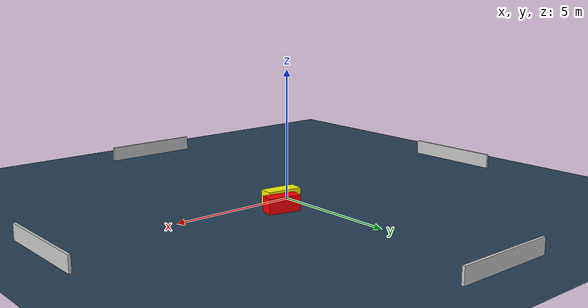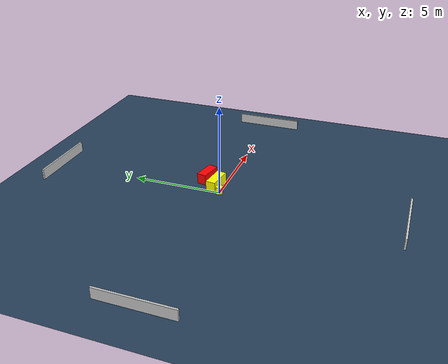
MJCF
<?xml version="1.0" ?>
<mujoco model="generated_environment">
  <option timestep="0.01" integrator="RK4" cone="elliptic"/>
  <default>
    <geom density="1"/>
  </default>
  <asset>
    <texture builtin="gradient" height="3072" name="skybox" rgb1="0.3 0.5 0.7" rgb2="0 0 0" type="skybox" width="512"/>
    <texture builtin="checker" height="300" name="groundplane" rgb1="0.2 0.3 0.4" rgb2="0.1 0.2 0.3" type="2d" width="300"/>
    <material name="groundplane" reflectance="0.2" texrepeat="5 5" texture="groundplane"/>
  </asset>
  <worldbody>
    <light dir="0 0 -1" directional="true" pos="0 0 1.5"/>
    <geom condim="3" friction="0.5 0.005 0.001" material="groundplane" name="floor" pos="0 0 0" size="0 0 0.05" type="plane"/>
    <body name="walls">
      <geom name="wall_1" condim="4" pos="-10.0 0.0 0.3" rgba="0.800000011920929 0.800000011920929 0.800000011920929 1.0" size="0.05 2.0 0.3" type="box"/>
      <geom name="wall_2" condim="4" pos="10.0 0.0 0.3" rgba="0.800000011920929 0.800000011920929 0.800000011920929 1.0" size="0.05 2.0 0.3" type="box"/>
      <geom name="wall_3" condim="4" pos="0.0 -10.0 0.3" rgba="0.800000011920929 0.800000011920929 0.800000011920929 1.0" size="2.0 0.05 0.3" type="box"/>
      <geom name="wall_4" condim="4" pos="0.0 10.0 0.3" rgba="0.800000011920929 0.800000011920929 0.800000011920929 1.0" size="2.0 0.05 0.3" type="box"/>
    </body>
    <body name="robot">
      <joint name="joint_x" type="slide" pos="0 0 0" axis="1 0 0"/>
      <joint name="joint_y" type="slide" pos="0 0 0" axis="0 1 0"/>
      <geom name="robot" type="cylinder" pos="0.0 0.0 0.2" size="0.2 0.2 0.0" mass="5.0" friction="1.0 0.005 0.0001" condim="4" rgba="1.0 1.0 0.0 1.0"/>
    </body>
    <body name="obstacle_1_movable">
      <geom name="obstacle_1_movable" condim="4" pos="0.6428285328183548 0.4221936063980449 0.3" euler="0 0 262.83778000464065" friction="0.0 0.005 0.001" rgba="1.0 1.0 0.0 1.0" size="0.272590768549367 0.6948408919014171 0.3" type="box" mass="0.1"/>
      <joint type="free"/>
    </body>
    <body name="obstacle_2_static">
      <geom name="obstacle_2_static" condim="4" pos="1.2303748104534329 1.168874190620742 0.3" euler="0 0 347.9362334348445" friction="0.0 0.005 0.001" rgba="1.0 0.0 0.0 1.0" size="0.6350238011858726 0.26547734981654264 0.3" type="box"/>
    </body>
  </worldbody>
  <actuator>
    <motor name="actuator_x" joint="joint_x" gear="1" ctrlrange="-1 1"/>
    <motor name="actuator_y" joint="joint_y" gear="1" ctrlrange="-1 1"/>
  </actuator>
</mujoco>
